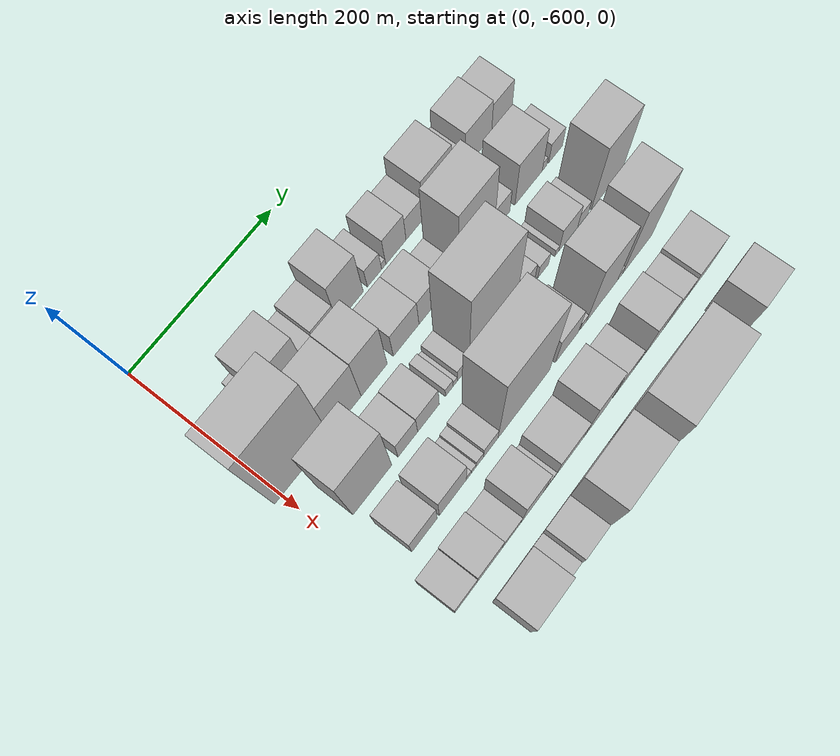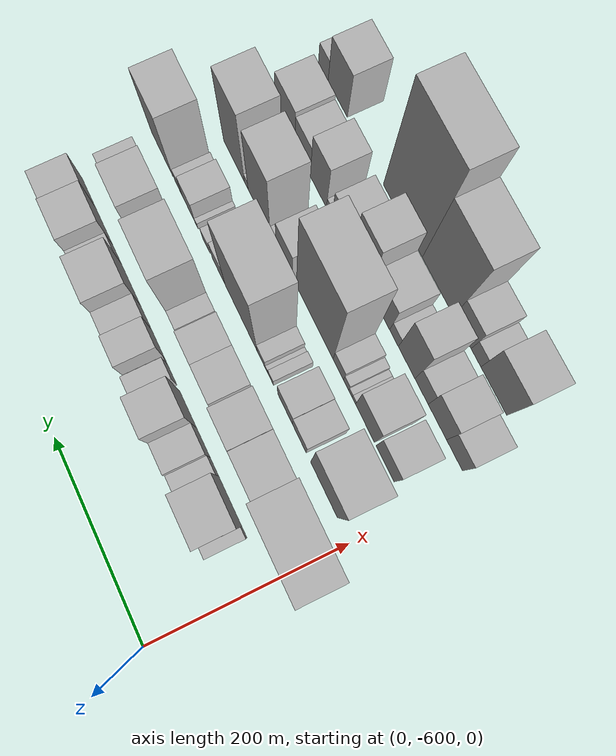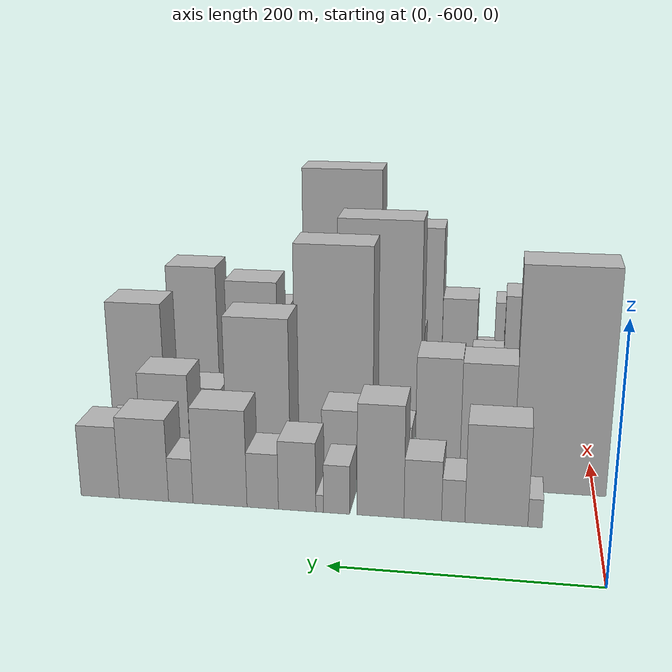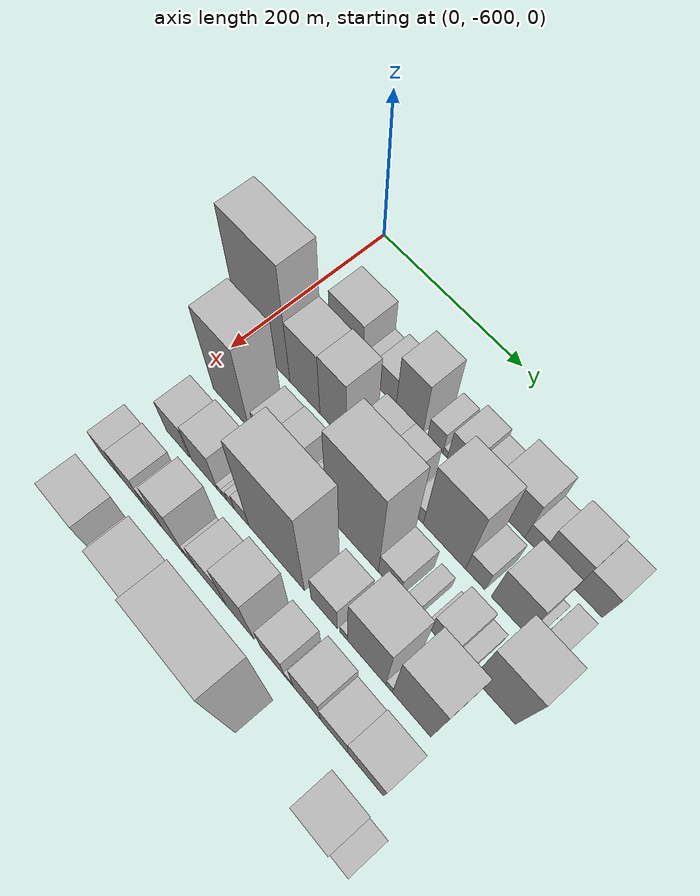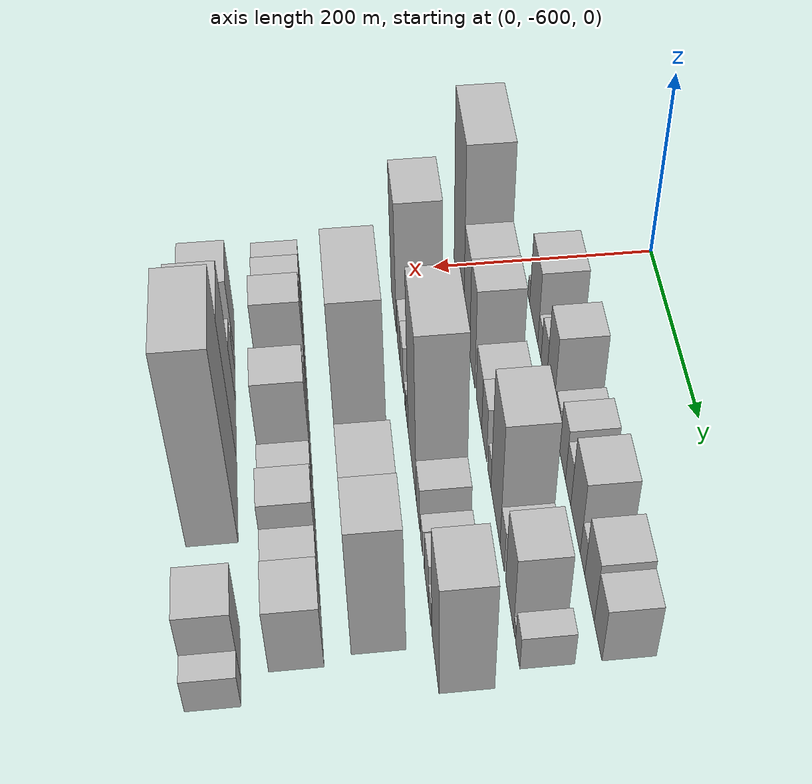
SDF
<sdf version="1.6">
 <world name="default">
  <model name="building_13">
   <static>1</static>
   <pose>100.0000 -551.0722 0 0.000000 0.000000 0.000000</pose>
   <link name="link">
    <pose>0 0 12.00 0 0 0</pose>
    <collision name="collision"><geometry><box><size>40.0000 11.1163 24.0000</size></box></geometry></collision>
    <visual name="visual">
     <cast_shadows>0</cast_shadows>
     <geometry><box><size>40.0000 11.1163 24.0000</size></box></geometry>
     <material>
      <script>
       <uri>model://HANNAS_wall/materials/scripts</uri>
       <uri>model://HANNAS_wall/materials/textures</uri>
       <name>vrc/HANNAS_wall</name>
      </script>
     </material>
    </visual>
   </link>
  </model>
  <model name="building_14">
   <static>1</static>
   <pose>100.0000 -521.0205 0 0.000000 0.000000 0.000000</pose>
   <link name="link">
    <pose>0 0 42.00 0 0 0</pose>
    <collision name="collision"><geometry><box><size>40.0000 48.9872 84.0000</size></box></geometry></collision>
    <visual name="visual">
     <cast_shadows>0</cast_shadows>
     <geometry><box><size>40.0000 48.9872 84.0000</size></box></geometry>
     <material>
      <script>
       <uri>model://HANNAS_wall/materials/scripts</uri>
       <uri>model://HANNAS_wall/materials/textures</uri>
       <name>vrc/HANNAS_wall</name>
      </script>
     </material>
    </visual>
   </link>
  </model>
  <model name="building_15">
   <static>1</static>
   <pose>100.0000 -487.3927 0 0.000000 0.000000 0.000000</pose>
   <link name="link">
    <pose>0 0 18.00 0 0 0</pose>
    <collision name="collision"><geometry><box><size>40.0000 18.2683 36.0000</size></box></geometry></collision>
    <visual name="visual">
     <cast_shadows>0</cast_shadows>
     <geometry><box><size>40.0000 18.2683 36.0000</size></box></geometry>
     <material>
      <script>
       <uri>model://HANNAS_wall/materials/scripts</uri>
       <uri>model://HANNAS_wall/materials/textures</uri>
       <name>vrc/HANNAS_wall</name>
      </script>
     </material>
    </visual>
   </link>
  </model>
  <model name="building_16">
   <static>1</static>
   <pose>100.0000 -463.3852 0 0.000000 0.000000 0.000000</pose>
   <link name="link">
    <pose>0 0 25.50 0 0 0</pose>
    <collision name="collision"><geometry><box><size>40.0000 29.7467 51.0000</size></box></geometry></collision>
    <visual name="visual">
     <cast_shadows>0</cast_shadows>
     <geometry><box><size>40.0000 29.7467 51.0000</size></box></geometry>
     <material>
      <script>
       <uri>model://HANNAS_wall/materials/scripts</uri>
       <uri>model://HANNAS_wall/materials/textures</uri>
       <name>vrc/HANNAS_wall</name>
      </script>
     </material>
    </visual>
   </link>
  </model>
  <model name="building_17">
   <static>1</static>
   <pose>100.0000 -429.7634 0 0.000000 0.000000 0.000000</pose>
   <link name="link">
    <pose>0 0 48.00 0 0 0</pose>
    <collision name="collision"><geometry><box><size>40.0000 37.4968 96.0000</size></box></geometry></collision>
    <visual name="visual">
     <cast_shadows>0</cast_shadows>
     <geometry><box><size>40.0000 37.4968 96.0000</size></box></geometry>
     <material>
      <script>
       <uri>model://HANNAS_wall/materials/scripts</uri>
       <uri>model://HANNAS_wall/materials/textures</uri>
       <name>vrc/HANNAS_wall</name>
      </script>
     </material>
    </visual>
   </link>
  </model>
  <model name="building_18">
   <static>1</static>
   <pose>100.0000 -394.4457 0 0.000000 0.000000 0.000000</pose>
   <link name="link">
    <pose>0 0 21.00 0 0 0</pose>
    <collision name="collision"><geometry><box><size>40.0000 21.1388 42.0000</size></box></geometry></collision>
    <visual name="visual">
     <cast_shadows>0</cast_shadows>
     <geometry><box><size>40.0000 21.1388 42.0000</size></box></geometry>
     <material>
      <script>
       <uri>model://HANNAS_wall/materials/scripts</uri>
       <uri>model://HANNAS_wall/materials/textures</uri>
       <name>vrc/HANNAS_wall</name>
      </script>
     </material>
    </visual>
   </link>
  </model>
  <model name="building_19">
   <static>1</static>
   <pose>100.0000 -380.8029 0 0.000000 0.000000 0.000000</pose>
   <link name="link">
    <pose>0 0 7.50 0 0 0</pose>
    <collision name="collision"><geometry><box><size>40.0000 6.1468 15.0000</size></box></geometry></collision>
    <visual name="visual">
     <cast_shadows>0</cast_shadows>
     <geometry><box><size>40.0000 6.1468 15.0000</size></box></geometry>
     <material>
      <script>
       <uri>model://HANNAS_wall/materials/scripts</uri>
       <uri>model://HANNAS_wall/materials/textures</uri>
       <name>vrc/HANNAS_wall</name>
      </script>
     </material>
    </visual>
   </link>
  </model>
  <model name="building_20">
   <static>1</static>
   <pose>100.0000 -362.4652 0 0.000000 0.000000 0.000000</pose>
   <link name="link">
    <pose>0 0 30.00 0 0 0</pose>
    <collision name="collision"><geometry><box><size>40.0000 30.5286 60.0000</size></box></geometry></collision>
    <visual name="visual">
     <cast_shadows>0</cast_shadows>
     <geometry><box><size>40.0000 30.5286 60.0000</size></box></geometry>
     <material>
      <script>
       <uri>model://HANNAS_wall/materials/scripts</uri>
       <uri>model://HANNAS_wall/materials/textures</uri>
       <name>vrc/HANNAS_wall</name>
      </script>
     </material>
    </visual>
   </link>
  </model>
  <model name="building_21">
   <static>1</static>
   <pose>100.0000 -334.2589 0 0.000000 0.000000 0.000000</pose>
   <link name="link">
    <pose>0 0 24.00 0 0 0</pose>
    <collision name="collision"><geometry><box><size>40.0000 25.8841 48.0000</size></box></geometry></collision>
    <visual name="visual">
     <cast_shadows>0</cast_shadows>
     <geometry><box><size>40.0000 25.8841 48.0000</size></box></geometry>
     <material>
      <script>
       <uri>model://HANNAS_wall/materials/scripts</uri>
       <uri>model://HANNAS_wall/materials/textures</uri>
       <name>vrc/HANNAS_wall</name>
      </script>
     </material>
    </visual>
   </link>
  </model>
  <model name="building_22">
   <static>1</static>
   <pose>100.0000 -298.8532 0 0.000000 0.000000 0.000000</pose>
   <link name="link">
    <pose>0 0 42.00 0 0 0</pose>
    <collision name="collision"><geometry><box><size>40.0000 44.9272 84.0000</size></box></geometry></collision>
    <visual name="visual">
     <cast_shadows>0</cast_shadows>
     <geometry><box><size>40.0000 44.9272 84.0000</size></box></geometry>
     <material>
      <script>
       <uri>model://HANNAS_wall/materials/scripts</uri>
       <uri>model://HANNAS_wall/materials/textures</uri>
       <name>vrc/HANNAS_wall</name>
      </script>
     </material>
    </visual>
   </link>
  </model>
  <model name="building_23">
   <static>1</static>
   <pose>100.0000 -266.1314 0 0.000000 0.000000 0.000000</pose>
   <link name="link">
    <pose>0 0 19.50 0 0 0</pose>
    <collision name="collision"><geometry><box><size>40.0000 20.5165 39.0000</size></box></geometry></collision>
    <visual name="visual">
     <cast_shadows>0</cast_shadows>
     <geometry><box><size>40.0000 20.5165 39.0000</size></box></geometry>
     <material>
      <script>
       <uri>model://HANNAS_wall/materials/scripts</uri>
       <uri>model://HANNAS_wall/materials/textures</uri>
       <name>vrc/HANNAS_wall</name>
      </script>
     </material>
    </visual>
   </link>
  </model>
  <model name="building_24">
   <static>1</static>
   <pose>100.0000 -235.0127 0 0.000000 0.000000 0.000000</pose>
   <link name="link">
    <pose>0 0 36.00 0 0 0</pose>
    <collision name="collision"><geometry><box><size>40.0000 41.7209 72.0000</size></box></geometry></collision>
    <visual name="visual">
     <cast_shadows>0</cast_shadows>
     <geometry><box><size>40.0000 41.7209 72.0000</size></box></geometry>
     <material>
      <script>
       <uri>model://HANNAS_wall/materials/scripts</uri>
       <uri>model://HANNAS_wall/materials/textures</uri>
       <name>vrc/HANNAS_wall</name>
      </script>
     </material>
    </visual>
   </link>
  </model>
  <model name="building_25">
   <static>1</static>
   <pose>100.0000 -197.7678 0 0.000000 0.000000 0.000000</pose>
   <link name="link">
    <pose>0 0 31.50 0 0 0</pose>
    <collision name="collision"><geometry><box><size>40.0000 32.7689 63.0000</size></box></geometry></collision>
    <visual name="visual">
     <cast_shadows>0</cast_shadows>
     <geometry><box><size>40.0000 32.7689 63.0000</size></box></geometry>
     <material>
      <script>
       <uri>model://HANNAS_wall/materials/scripts</uri>
       <uri>model://HANNAS_wall/materials/textures</uri>
       <name>vrc/HANNAS_wall</name>
      </script>
     </material>
    </visual>
   </link>
  </model>
  <model name="building_76">
   <static>1</static>
   <pose>160.0000 -571.4103 0 0.000000 0.000000 0.000000</pose>
   <link name="link">
    <pose>0 0 97.50 0 0 0</pose>
    <collision name="collision"><geometry><box><size>40.0000 76.1925 195.0000</size></box></geometry></collision>
    <visual name="visual">
     <cast_shadows>0</cast_shadows>
     <geometry><box><size>40.0000 76.1925 195.0000</size></box></geometry>
     <material>
      <script>
       <uri>model://HANNAS_wall/materials/scripts</uri>
       <uri>model://HANNAS_wall/materials/textures</uri>
       <name>vrc/HANNAS_wall</name>
      </script>
     </material>
    </visual>
   </link>
  </model>
  <model name="building_77">
   <static>1</static>
   <pose>160.0000 -511.2166 0 0.000000 0.000000 0.000000</pose>
   <link name="link">
    <pose>0 0 55.50 0 0 0</pose>
    <collision name="collision"><geometry><box><size>40.0000 44.1948 111.0000</size></box></geometry></collision>
    <visual name="visual">
     <cast_shadows>0</cast_shadows>
     <geometry><box><size>40.0000 44.1948 111.0000</size></box></geometry>
     <material>
      <script>
       <uri>model://HANNAS_wall/materials/scripts</uri>
       <uri>model://HANNAS_wall/materials/textures</uri>
       <name>vrc/HANNAS_wall</name>
      </script>
     </material>
    </visual>
   </link>
  </model>
  <model name="building_78">
   <static>1</static>
   <pose>160.0000 -470.3845 0 0.000000 0.000000 0.000000</pose>
   <link name="link">
    <pose>0 0 57.00 0 0 0</pose>
    <collision name="collision"><geometry><box><size>40.0000 37.4695 114.0000</size></box></geometry></collision>
    <visual name="visual">
     <cast_shadows>0</cast_shadows>
     <geometry><box><size>40.0000 37.4695 114.0000</size></box></geometry>
     <material>
      <script>
       <uri>model://HANNAS_wall/materials/scripts</uri>
       <uri>model://HANNAS_wall/materials/textures</uri>
       <name>vrc/HANNAS_wall</name>
      </script>
     </material>
    </visual>
   </link>
  </model>
  <model name="building_79">
   <static>1</static>
   <pose>160.0000 -423.7850 0 0.000000 0.000000 0.000000</pose>
   <link name="link">
    <pose>0 0 31.50 0 0 0</pose>
    <collision name="collision"><geometry><box><size>40.0000 37.7293 63.0000</size></box></geometry></collision>
    <visual name="visual">
     <cast_shadows>0</cast_shadows>
     <geometry><box><size>40.0000 37.7293 63.0000</size></box></geometry>
     <material>
      <script>
       <uri>model://HANNAS_wall/materials/scripts</uri>
       <uri>model://HANNAS_wall/materials/textures</uri>
       <name>vrc/HANNAS_wall</name>
      </script>
     </material>
    </visual>
   </link>
  </model>
  <model name="building_80">
   <static>1</static>
   <pose>160.0000 -388.7384 0 0.000000 0.000000 0.000000</pose>
   <link name="link">
    <pose>0 0 31.50 0 0 0</pose>
    <collision name="collision"><geometry><box><size>40.0000 32.3639 63.0000</size></box></geometry></collision>
    <visual name="visual">
     <cast_shadows>0</cast_shadows>
     <geometry><box><size>40.0000 32.3639 63.0000</size></box></geometry>
     <material>
      <script>
       <uri>model://HANNAS_wall/materials/scripts</uri>
       <uri>model://HANNAS_wall/materials/textures</uri>
       <name>vrc/HANNAS_wall</name>
      </script>
     </material>
    </visual>
   </link>
  </model>
  <model name="building_81">
   <static>1</static>
   <pose>160.0000 -354.9567 0 0.000000 0.000000 0.000000</pose>
   <link name="link">
    <pose>0 0 16.50 0 0 0</pose>
    <collision name="collision"><geometry><box><size>40.0000 19.1995 33.0000</size></box></geometry></collision>
    <visual name="visual">
     <cast_shadows>0</cast_shadows>
     <geometry><box><size>40.0000 19.1995 33.0000</size></box></geometry>
     <material>
      <script>
       <uri>model://HANNAS_wall/materials/scripts</uri>
       <uri>model://HANNAS_wall/materials/textures</uri>
       <name>vrc/HANNAS_wall</name>
      </script>
     </material>
    </visual>
   </link>
  </model>
  <model name="building_82">
   <static>1</static>
   <pose>160.0000 -317.7730 0 0.000000 0.000000 0.000000</pose>
   <link name="link">
    <pose>0 0 70.50 0 0 0</pose>
    <collision name="collision"><geometry><box><size>40.0000 55.1679 141.0000</size></box></geometry></collision>
    <visual name="visual">
     <cast_shadows>0</cast_shadows>
     <geometry><box><size>40.0000 55.1679 141.0000</size></box></geometry>
     <material>
      <script>
       <uri>model://HANNAS_wall/materials/scripts</uri>
       <uri>model://HANNAS_wall/materials/textures</uri>
       <name>vrc/HANNAS_wall</name>
      </script>
     </material>
    </visual>
   </link>
  </model>
  <model name="building_83">
   <static>1</static>
   <pose>160.0000 -277.8969 0 0.000000 0.000000 0.000000</pose>
   <link name="link">
    <pose>0 0 24.00 0 0 0</pose>
    <collision name="collision"><geometry><box><size>40.0000 24.5843 48.0000</size></box></geometry></collision>
    <visual name="visual">
     <cast_shadows>0</cast_shadows>
     <geometry><box><size>40.0000 24.5843 48.0000</size></box></geometry>
     <material>
      <script>
       <uri>model://HANNAS_wall/materials/scripts</uri>
       <uri>model://HANNAS_wall/materials/textures</uri>
       <name>vrc/HANNAS_wall</name>
      </script>
     </material>
    </visual>
   </link>
  </model>
  <model name="building_84">
   <static>1</static>
   <pose>160.0000 -235.6598 0 0.000000 0.000000 0.000000</pose>
   <link name="link">
    <pose>0 0 43.50 0 0 0</pose>
    <collision name="collision"><geometry><box><size>40.0000 43.8899 87.0000</size></box></geometry></collision>
    <visual name="visual">
     <cast_shadows>0</cast_shadows>
     <geometry><box><size>40.0000 43.8899 87.0000</size></box></geometry>
     <material>
      <script>
       <uri>model://HANNAS_wall/materials/scripts</uri>
       <uri>model://HANNAS_wall/materials/textures</uri>
       <name>vrc/HANNAS_wall</name>
      </script>
     </material>
    </visual>
   </link>
  </model>
  <model name="building_85">
   <static>1</static>
   <pose>160.0000 -210.0027 0 0.000000 0.000000 0.000000</pose>
   <link name="link">
    <pose>0 0 9.00 0 0 0</pose>
    <collision name="collision"><geometry><box><size>40.0000 7.4242 18.0000</size></box></geometry></collision>
    <visual name="visual">
     <cast_shadows>0</cast_shadows>
     <geometry><box><size>40.0000 7.4242 18.0000</size></box></geometry>
     <material>
      <script>
       <uri>model://HANNAS_wall/materials/scripts</uri>
       <uri>model://HANNAS_wall/materials/textures</uri>
       <name>vrc/HANNAS_wall</name>
      </script>
     </material>
    </visual>
   </link>
  </model>
  <model name="building_86">
   <static>1</static>
   <pose>160.0000 -192.0777 0 0.000000 0.000000 0.000000</pose>
   <link name="link">
    <pose>0 0 19.50 0 0 0</pose>
    <collision name="collision"><geometry><box><size>40.0000 22.4259 39.0000</size></box></geometry></collision>
    <visual name="visual">
     <cast_shadows>0</cast_shadows>
     <geometry><box><size>40.0000 22.4259 39.0000</size></box></geometry>
     <material>
      <script>
       <uri>model://HANNAS_wall/materials/scripts</uri>
       <uri>model://HANNAS_wall/materials/textures</uri>
       <name>vrc/HANNAS_wall</name>
      </script>
     </material>
    </visual>
   </link>
  </model>
  <model name="building_132">
   <static>1</static>
   <pose>220.0000 -548.3788 0 0.000000 0.000000 0.000000</pose>
   <link name="link">
    <pose>0 0 75.00 0 0 0</pose>
    <collision name="collision"><geometry><box><size>40.0000 54.3492 150.0000</size></box></geometry></collision>
    <visual name="visual">
     <cast_shadows>0</cast_shadows>
     <geometry><box><size>40.0000 54.3492 150.0000</size></box></geometry>
     <material>
      <script>
       <uri>model://HANNAS_wall/materials/scripts</uri>
       <uri>model://HANNAS_wall/materials/textures</uri>
       <name>vrc/HANNAS_wall</name>
      </script>
     </material>
    </visual>
   </link>
  </model>
  <model name="building_133">
   <static>1</static>
   <pose>220.0000 -498.1216 0 0.000000 0.000000 0.000000</pose>
   <link name="link">
    <pose>0 0 25.50 0 0 0</pose>
    <collision name="collision"><geometry><box><size>40.0000 28.1653 51.0000</size></box></geometry></collision>
    <visual name="visual">
     <cast_shadows>0</cast_shadows>
     <geometry><box><size>40.0000 28.1653 51.0000</size></box></geometry>
     <material>
      <script>
       <uri>model://HANNAS_wall/materials/scripts</uri>
       <uri>model://HANNAS_wall/materials/textures</uri>
       <name>vrc/HANNAS_wall</name>
      </script>
     </material>
    </visual>
   </link>
  </model>
  <model name="building_134">
   <static>1</static>
   <pose>220.0000 -468.3940 0 0.000000 0.000000 0.000000</pose>
   <link name="link">
    <pose>0 0 27.00 0 0 0</pose>
    <collision name="collision"><geometry><box><size>40.0000 31.2900 54.0000</size></box></geometry></collision>
    <visual name="visual">
     <cast_shadows>0</cast_shadows>
     <geometry><box><size>40.0000 31.2900 54.0000</size></box></geometry>
     <material>
      <script>
       <uri>model://HANNAS_wall/materials/scripts</uri>
       <uri>model://HANNAS_wall/materials/textures</uri>
       <name>vrc/HANNAS_wall</name>
      </script>
     </material>
    </visual>
   </link>
  </model>
  <model name="building_135">
   <static>1</static>
   <pose>220.0000 -438.0207 0 0.000000 0.000000 0.000000</pose>
   <link name="link">
    <pose>0 0 12.00 0 0 0</pose>
    <collision name="collision"><geometry><box><size>40.0000 11.4565 24.0000</size></box></geometry></collision>
    <visual name="visual">
     <cast_shadows>0</cast_shadows>
     <geometry><box><size>40.0000 11.4565 24.0000</size></box></geometry>
     <material>
      <script>
       <uri>model://HANNAS_wall/materials/scripts</uri>
       <uri>model://HANNAS_wall/materials/textures</uri>
       <name>vrc/HANNAS_wall</name>
      </script>
     </material>
    </visual>
   </link>
  </model>
  <model name="building_136">
   <static>1</static>
   <pose>220.0000 -429.2875 0 0.000000 0.000000 0.000000</pose>
   <link name="link">
    <pose>0 0 7.50 0 0 0</pose>
    <collision name="collision"><geometry><box><size>40.0000 6.0100 15.0000</size></box></geometry></collision>
    <visual name="visual">
     <cast_shadows>0</cast_shadows>
     <geometry><box><size>40.0000 6.0100 15.0000</size></box></geometry>
     <material>
      <script>
       <uri>model://HANNAS_wall/materials/scripts</uri>
       <uri>model://HANNAS_wall/materials/textures</uri>
       <name>vrc/HANNAS_wall</name>
      </script>
     </material>
    </visual>
   </link>
  </model>
  <model name="building_137">
   <static>1</static>
   <pose>220.0000 -417.5265 0 0.000000 0.000000 0.000000</pose>
   <link name="link">
    <pose>0 0 16.50 0 0 0</pose>
    <collision name="collision"><geometry><box><size>40.0000 17.5119 33.0000</size></box></geometry></collision>
    <visual name="visual">
     <cast_shadows>0</cast_shadows>
     <geometry><box><size>40.0000 17.5119 33.0000</size></box></geometry>
     <material>
      <script>
       <uri>model://HANNAS_wall/materials/scripts</uri>
       <uri>model://HANNAS_wall/materials/textures</uri>
       <name>vrc/HANNAS_wall</name>
      </script>
     </material>
    </visual>
   </link>
  </model>
  <model name="building_138">
   <static>1</static>
   <pose>220.0000 -373.6180 0 0.000000 0.000000 0.000000</pose>
   <link name="link">
    <pose>0 0 94.50 0 0 0</pose>
    <collision name="collision"><geometry><box><size>40.0000 70.3052 189.0000</size></box></geometry></collision>
    <visual name="visual">
     <cast_shadows>0</cast_shadows>
     <geometry><box><size>40.0000 70.3052 189.0000</size></box></geometry>
     <material>
      <script>
       <uri>model://HANNAS_wall/materials/scripts</uri>
       <uri>model://HANNAS_wall/materials/textures</uri>
       <name>vrc/HANNAS_wall</name>
      </script>
     </material>
    </visual>
   </link>
  </model>
  <model name="building_139">
   <static>1</static>
   <pose>220.0000 -323.9678 0 0.000000 0.000000 0.000000</pose>
   <link name="link">
    <pose>0 0 25.50 0 0 0</pose>
    <collision name="collision"><geometry><box><size>40.0000 28.9952 51.0000</size></box></geometry></collision>
    <visual name="visual">
     <cast_shadows>0</cast_shadows>
     <geometry><box><size>40.0000 28.9952 51.0000</size></box></geometry>
     <material>
      <script>
       <uri>model://HANNAS_wall/materials/scripts</uri>
       <uri>model://HANNAS_wall/materials/textures</uri>
       <name>vrc/HANNAS_wall</name>
      </script>
     </material>
    </visual>
   </link>
  </model>
  <model name="building_140">
   <static>1</static>
   <pose>220.0000 -295.0157 0 0.000000 0.000000 0.000000</pose>
   <link name="link">
    <pose>0 0 15.00 0 0 0</pose>
    <collision name="collision"><geometry><box><size>40.0000 16.9089 30.0000</size></box></geometry></collision>
    <visual name="visual">
     <cast_shadows>0</cast_shadows>
     <geometry><box><size>40.0000 16.9089 30.0000</size></box></geometry>
     <material>
      <script>
       <uri>model://HANNAS_wall/materials/scripts</uri>
       <uri>model://HANNAS_wall/materials/textures</uri>
       <name>vrc/HANNAS_wall</name>
      </script>
     </material>
    </visual>
   </link>
  </model>
  <model name="building_141">
   <static>1</static>
   <pose>220.0000 -273.5175 0 0.000000 0.000000 0.000000</pose>
   <link name="link">
    <pose>0 0 7.50 0 0 0</pose>
    <collision name="collision"><geometry><box><size>40.0000 6.0876 15.0000</size></box></geometry></collision>
    <visual name="visual">
     <cast_shadows>0</cast_shadows>
     <geometry><box><size>40.0000 6.0876 15.0000</size></box></geometry>
     <material>
      <script>
       <uri>model://HANNAS_wall/materials/scripts</uri>
       <uri>model://HANNAS_wall/materials/textures</uri>
       <name>vrc/HANNAS_wall</name>
      </script>
     </material>
    </visual>
   </link>
  </model>
  <model name="building_142">
   <static>1</static>
   <pose>220.0000 -255.2417 0 0.000000 0.000000 0.000000</pose>
   <link name="link">
    <pose>0 0 25.50 0 0 0</pose>
    <collision name="collision"><geometry><box><size>40.0000 30.4639 51.0000</size></box></geometry></collision>
    <visual name="visual">
     <cast_shadows>0</cast_shadows>
     <geometry><box><size>40.0000 30.4639 51.0000</size></box></geometry>
     <material>
      <script>
       <uri>model://HANNAS_wall/materials/scripts</uri>
       <uri>model://HANNAS_wall/materials/textures</uri>
       <name>vrc/HANNAS_wall</name>
      </script>
     </material>
    </visual>
   </link>
  </model>
  <model name="building_143">
   <static>1</static>
   <pose>220.0000 -231.4248 0 0.000000 0.000000 0.000000</pose>
   <link name="link">
    <pose>0 0 15.00 0 0 0</pose>
    <collision name="collision"><geometry><box><size>40.0000 17.1699 30.0000</size></box></geometry></collision>
    <visual name="visual">
     <cast_shadows>0</cast_shadows>
     <geometry><box><size>40.0000 17.1699 30.0000</size></box></geometry>
     <material>
      <script>
       <uri>model://HANNAS_wall/materials/scripts</uri>
       <uri>model://HANNAS_wall/materials/textures</uri>
       <name>vrc/HANNAS_wall</name>
      </script>
     </material>
    </visual>
   </link>
  </model>
  <model name="building_144">
   <static>1</static>
   <pose>220.0000 -192.4136 0 0.000000 0.000000 0.000000</pose>
   <link name="link">
    <pose>0 0 64.50 0 0 0</pose>
    <collision name="collision"><geometry><box><size>40.0000 50.8526 129.0000</size></box></geometry></collision>
    <visual name="visual">
     <cast_shadows>0</cast_shadows>
     <geometry><box><size>40.0000 50.8526 129.0000</size></box></geometry>
     <material>
      <script>
       <uri>model://HANNAS_wall/materials/scripts</uri>
       <uri>model://HANNAS_wall/materials/textures</uri>
       <name>vrc/HANNAS_wall</name>
      </script>
     </material>
    </visual>
   </link>
  </model>
  <model name="building_183">
   <static>1</static>
   <pose>280.0000 -551.7551 0 0.000000 0.000000 0.000000</pose>
   <link name="link">
    <pose>0 0 31.50 0 0 0</pose>
    <collision name="collision"><geometry><box><size>40.0000 35.9492 63.0000</size></box></geometry></collision>
    <visual name="visual">
     <cast_shadows>0</cast_shadows>
     <geometry><box><size>40.0000 35.9492 63.0000</size></box></geometry>
     <material>
      <script>
       <uri>model://HANNAS_wall/materials/scripts</uri>
       <uri>model://HANNAS_wall/materials/textures</uri>
       <name>vrc/HANNAS_wall</name>
      </script>
     </material>
    </visual>
   </link>
  </model>
  <model name="building_184">
   <static>1</static>
   <pose>280.0000 -511.4812 0 0.000000 0.000000 0.000000</pose>
   <link name="link">
    <pose>0 0 37.50 0 0 0</pose>
    <collision name="collision"><geometry><box><size>40.0000 38.5985 75.0000</size></box></geometry></collision>
    <visual name="visual">
     <cast_shadows>0</cast_shadows>
     <geometry><box><size>40.0000 38.5985 75.0000</size></box></geometry>
     <material>
      <script>
       <uri>model://HANNAS_wall/materials/scripts</uri>
       <uri>model://HANNAS_wall/materials/textures</uri>
       <name>vrc/HANNAS_wall</name>
      </script>
     </material>
    </visual>
   </link>
  </model>
  <model name="building_185">
   <static>1</static>
   <pose>280.0000 -488.6132 0 0.000000 0.000000 0.000000</pose>
   <link name="link">
    <pose>0 0 7.50 0 0 0</pose>
    <collision name="collision"><geometry><box><size>40.0000 7.1376 15.0000</size></box></geometry></collision>
    <visual name="visual">
     <cast_shadows>0</cast_shadows>
     <geometry><box><size>40.0000 7.1376 15.0000</size></box></geometry>
     <material>
      <script>
       <uri>model://HANNAS_wall/materials/scripts</uri>
       <uri>model://HANNAS_wall/materials/textures</uri>
       <name>vrc/HANNAS_wall</name>
      </script>
     </material>
    </visual>
   </link>
  </model>
  <model name="building_186">
   <static>1</static>
   <pose>280.0000 -481.5010 0 0.000000 0.000000 0.000000</pose>
   <link name="link">
    <pose>0 0 7.50 0 0 0</pose>
    <collision name="collision"><geometry><box><size>40.0000 7.0868 15.0000</size></box></geometry></collision>
    <visual name="visual">
     <cast_shadows>0</cast_shadows>
     <geometry><box><size>40.0000 7.0868 15.0000</size></box></geometry>
     <material>
      <script>
       <uri>model://HANNAS_wall/materials/scripts</uri>
       <uri>model://HANNAS_wall/materials/textures</uri>
       <name>vrc/HANNAS_wall</name>
      </script>
     </material>
    </visual>
   </link>
  </model>
  <model name="building_187">
   <static>1</static>
   <pose>280.0000 -472.6919 0 0.000000 0.000000 0.000000</pose>
   <link name="link">
    <pose>0 0 12.00 0 0 0</pose>
    <collision name="collision"><geometry><box><size>40.0000 10.5314 24.0000</size></box></geometry></collision>
    <visual name="visual">
     <cast_shadows>0</cast_shadows>
     <geometry><box><size>40.0000 10.5314 24.0000</size></box></geometry>
     <material>
      <script>
       <uri>model://HANNAS_wall/materials/scripts</uri>
       <uri>model://HANNAS_wall/materials/textures</uri>
       <name>vrc/HANNAS_wall</name>
      </script>
     </material>
    </visual>
   </link>
  </model>
  <model name="building_188">
   <static>1</static>
   <pose>280.0000 -456.6886 0 0.000000 0.000000 0.000000</pose>
   <link name="link">
    <pose>0 0 18.00 0 0 0</pose>
    <collision name="collision"><geometry><box><size>40.0000 21.4753 36.0000</size></box></geometry></collision>
    <visual name="visual">
     <cast_shadows>0</cast_shadows>
     <geometry><box><size>40.0000 21.4753 36.0000</size></box></geometry>
     <material>
      <script>
       <uri>model://HANNAS_wall/materials/scripts</uri>
       <uri>model://HANNAS_wall/materials/textures</uri>
       <name>vrc/HANNAS_wall</name>
      </script>
     </material>
    </visual>
   </link>
  </model>
  <model name="building_189">
   <static>1</static>
   <pose>280.0000 -406.9970 0 0.000000 0.000000 0.000000</pose>
   <link name="link">
    <pose>0 0 99.00 0 0 0</pose>
    <collision name="collision"><geometry><box><size>40.0000 77.9077 198.0000</size></box></geometry></collision>
    <visual name="visual">
     <cast_shadows>0</cast_shadows>
     <geometry><box><size>40.0000 77.9077 198.0000</size></box></geometry>
     <material>
      <script>
       <uri>model://HANNAS_wall/materials/scripts</uri>
       <uri>model://HANNAS_wall/materials/textures</uri>
       <name>vrc/HANNAS_wall</name>
      </script>
     </material>
    </visual>
   </link>
  </model>
  <model name="building_190">
   <static>1</static>
   <pose>280.0000 -341.4598 0 0.000000 0.000000 0.000000</pose>
   <link name="link">
    <pose>0 0 33.00 0 0 0</pose>
    <collision name="collision"><geometry><box><size>40.0000 35.1668 66.0000</size></box></geometry></collision>
    <visual name="visual">
     <cast_shadows>0</cast_shadows>
     <geometry><box><size>40.0000 35.1668 66.0000</size></box></geometry>
     <material>
      <script>
       <uri>model://HANNAS_wall/materials/scripts</uri>
       <uri>model://HANNAS_wall/materials/textures</uri>
       <name>vrc/HANNAS_wall</name>
      </script>
     </material>
    </visual>
   </link>
  </model>
  <model name="building_191">
   <static>1</static>
   <pose>280.0000 -315.6999 0 0.000000 0.000000 0.000000</pose>
   <link name="link">
    <pose>0 0 10.50 0 0 0</pose>
    <collision name="collision"><geometry><box><size>40.0000 10.3529 21.0000</size></box></geometry></collision>
    <visual name="visual">
     <cast_shadows>0</cast_shadows>
     <geometry><box><size>40.0000 10.3529 21.0000</size></box></geometry>
     <material>
      <script>
       <uri>model://HANNAS_wall/materials/scripts</uri>
       <uri>model://HANNAS_wall/materials/textures</uri>
       <name>vrc/HANNAS_wall</name>
      </script>
     </material>
    </visual>
   </link>
  </model>
  <model name="building_192">
   <static>1</static>
   <pose>280.0000 -286.0220 0 0.000000 0.000000 0.000000</pose>
   <link name="link">
    <pose>0 0 67.50 0 0 0</pose>
    <collision name="collision"><geometry><box><size>40.0000 49.0030 135.0000</size></box></geometry></collision>
    <visual name="visual">
     <cast_shadows>0</cast_shadows>
     <geometry><box><size>40.0000 49.0030 135.0000</size></box></geometry>
     <material>
      <script>
       <uri>model://HANNAS_wall/materials/scripts</uri>
       <uri>model://HANNAS_wall/materials/textures</uri>
       <name>vrc/HANNAS_wall</name>
      </script>
     </material>
    </visual>
   </link>
  </model>
  <model name="building_193">
   <static>1</static>
   <pose>280.0000 -257.2705 0 0.000000 0.000000 0.000000</pose>
   <link name="link">
    <pose>0 0 10.50 0 0 0</pose>
    <collision name="collision"><geometry><box><size>40.0000 8.5000 21.0000</size></box></geometry></collision>
    <visual name="visual">
     <cast_shadows>0</cast_shadows>
     <geometry><box><size>40.0000 8.5000 21.0000</size></box></geometry>
     <material>
      <script>
       <uri>model://HANNAS_wall/materials/scripts</uri>
       <uri>model://HANNAS_wall/materials/textures</uri>
       <name>vrc/HANNAS_wall</name>
      </script>
     </material>
    </visual>
   </link>
  </model>
  <model name="building_194">
   <static>1</static>
   <pose>280.0000 -229.1738 0 0.000000 0.000000 0.000000</pose>
   <link name="link">
    <pose>0 0 73.50 0 0 0</pose>
    <collision name="collision"><geometry><box><size>40.0000 47.6933 147.0000</size></box></geometry></collision>
    <visual name="visual">
     <cast_shadows>0</cast_shadows>
     <geometry><box><size>40.0000 47.6933 147.0000</size></box></geometry>
     <material>
      <script>
       <uri>model://HANNAS_wall/materials/scripts</uri>
       <uri>model://HANNAS_wall/materials/textures</uri>
       <name>vrc/HANNAS_wall</name>
      </script>
     </material>
    </visual>
   </link>
  </model>
  <model name="building_238">
   <static>1</static>
   <pose>340.0000 -572.3643 0 0.000000 0.000000 0.000000</pose>
   <link name="link">
    <pose>0 0 28.50 0 0 0</pose>
    <collision name="collision"><geometry><box><size>40.0000 30.8450 57.0000</size></box></geometry></collision>
    <visual name="visual">
     <cast_shadows>0</cast_shadows>
     <geometry><box><size>40.0000 30.8450 57.0000</size></box></geometry>
     <material>
      <script>
       <uri>model://HANNAS_wall/materials/scripts</uri>
       <uri>model://HANNAS_wall/materials/textures</uri>
       <name>vrc/HANNAS_wall</name>
      </script>
     </material>
    </visual>
   </link>
  </model>
  <model name="building_239">
   <static>1</static>
   <pose>340.0000 -539.0578 0 0.000000 0.000000 0.000000</pose>
   <link name="link">
    <pose>0 0 34.50 0 0 0</pose>
    <collision name="collision"><geometry><box><size>40.0000 35.7679 69.0000</size></box></geometry></collision>
    <visual name="visual">
     <cast_shadows>0</cast_shadows>
     <geometry><box><size>40.0000 35.7679 69.0000</size></box></geometry>
     <material>
      <script>
       <uri>model://HANNAS_wall/materials/scripts</uri>
       <uri>model://HANNAS_wall/materials/textures</uri>
       <name>vrc/HANNAS_wall</name>
      </script>
     </material>
    </visual>
   </link>
  </model>
  <model name="building_240">
   <static>1</static>
   <pose>340.0000 -508.0949 0 0.000000 0.000000 0.000000</pose>
   <link name="link">
    <pose>0 0 25.50 0 0 0</pose>
    <collision name="collision"><geometry><box><size>40.0000 26.1579 51.0000</size></box></geometry></collision>
    <visual name="visual">
     <cast_shadows>0</cast_shadows>
     <geometry><box><size>40.0000 26.1579 51.0000</size></box></geometry>
     <material>
      <script>
       <uri>model://HANNAS_wall/materials/scripts</uri>
       <uri>model://HANNAS_wall/materials/textures</uri>
       <name>vrc/HANNAS_wall</name>
      </script>
     </material>
    </visual>
   </link>
  </model>
  <model name="building_241">
   <static>1</static>
   <pose>340.0000 -478.2842 0 0.000000 0.000000 0.000000</pose>
   <link name="link">
    <pose>0 0 54.00 0 0 0</pose>
    <collision name="collision"><geometry><box><size>40.0000 33.4635 108.0000</size></box></geometry></collision>
    <visual name="visual">
     <cast_shadows>0</cast_shadows>
     <geometry><box><size>40.0000 33.4635 108.0000</size></box></geometry>
     <material>
      <script>
       <uri>model://HANNAS_wall/materials/scripts</uri>
       <uri>model://HANNAS_wall/materials/textures</uri>
       <name>vrc/HANNAS_wall</name>
      </script>
     </material>
    </visual>
   </link>
  </model>
  <model name="building_242">
   <static>1</static>
   <pose>340.0000 -452.7297 0 0.000000 0.000000 0.000000</pose>
   <link name="link">
    <pose>0 0 15.00 0 0 0</pose>
    <collision name="collision"><geometry><box><size>40.0000 17.6456 30.0000</size></box></geometry></collision>
    <visual name="visual">
     <cast_shadows>0</cast_shadows>
     <geometry><box><size>40.0000 17.6456 30.0000</size></box></geometry>
     <material>
      <script>
       <uri>model://HANNAS_wall/materials/scripts</uri>
       <uri>model://HANNAS_wall/materials/textures</uri>
       <name>vrc/HANNAS_wall</name>
      </script>
     </material>
    </visual>
   </link>
  </model>
  <model name="building_243">
   <static>1</static>
   <pose>340.0000 -422.6998 0 0.000000 0.000000 0.000000</pose>
   <link name="link">
    <pose>0 0 36.00 0 0 0</pose>
    <collision name="collision"><geometry><box><size>40.0000 42.4143 72.0000</size></box></geometry></collision>
    <visual name="visual">
     <cast_shadows>0</cast_shadows>
     <geometry><box><size>40.0000 42.4143 72.0000</size></box></geometry>
     <material>
      <script>
       <uri>model://HANNAS_wall/materials/scripts</uri>
       <uri>model://HANNAS_wall/materials/textures</uri>
       <name>vrc/HANNAS_wall</name>
      </script>
     </material>
    </visual>
   </link>
  </model>
  <model name="building_244">
   <static>1</static>
   <pose>340.0000 -382.6698 0 0.000000 0.000000 0.000000</pose>
   <link name="link">
    <pose>0 0 61.50 0 0 0</pose>
    <collision name="collision"><geometry><box><size>40.0000 37.6457 123.0000</size></box></geometry></collision>
    <visual name="visual">
     <cast_shadows>0</cast_shadows>
     <geometry><box><size>40.0000 37.6457 123.0000</size></box></geometry>
     <material>
      <script>
       <uri>model://HANNAS_wall/materials/scripts</uri>
       <uri>model://HANNAS_wall/materials/textures</uri>
       <name>vrc/HANNAS_wall</name>
      </script>
     </material>
    </visual>
   </link>
  </model>
  <model name="building_245">
   <static>1</static>
   <pose>340.0000 -338.2888 0 0.000000 0.000000 0.000000</pose>
   <link name="link">
    <pose>0 0 33.00 0 0 0</pose>
    <collision name="collision"><geometry><box><size>40.0000 33.1162 66.0000</size></box></geometry></collision>
    <visual name="visual">
     <cast_shadows>0</cast_shadows>
     <geometry><box><size>40.0000 33.1162 66.0000</size></box></geometry>
     <material>
      <script>
       <uri>model://HANNAS_wall/materials/scripts</uri>
       <uri>model://HANNAS_wall/materials/textures</uri>
       <name>vrc/HANNAS_wall</name>
      </script>
     </material>
    </visual>
   </link>
  </model>
  <model name="building_246">
   <static>1</static>
   <pose>340.0000 -316.0617 0 0.000000 0.000000 0.000000</pose>
   <link name="link">
    <pose>0 0 12.00 0 0 0</pose>
    <collision name="collision"><geometry><box><size>40.0000 11.3379 24.0000</size></box></geometry></collision>
    <visual name="visual">
     <cast_shadows>0</cast_shadows>
     <geometry><box><size>40.0000 11.3379 24.0000</size></box></geometry>
     <material>
      <script>
       <uri>model://HANNAS_wall/materials/scripts</uri>
       <uri>model://HANNAS_wall/materials/textures</uri>
       <name>vrc/HANNAS_wall</name>
      </script>
     </material>
    </visual>
   </link>
  </model>
  <model name="building_247">
   <static>1</static>
   <pose>340.0000 -292.8638 0 0.000000 0.000000 0.000000</pose>
   <link name="link">
    <pose>0 0 46.50 0 0 0</pose>
    <collision name="collision"><geometry><box><size>40.0000 35.0580 93.0000</size></box></geometry></collision>
    <visual name="visual">
     <cast_shadows>0</cast_shadows>
     <geometry><box><size>40.0000 35.0580 93.0000</size></box></geometry>
     <material>
      <script>
       <uri>model://HANNAS_wall/materials/scripts</uri>
       <uri>model://HANNAS_wall/materials/textures</uri>
       <name>vrc/HANNAS_wall</name>
      </script>
     </material>
    </visual>
   </link>
  </model>
  <model name="building_248">
   <static>1</static>
   <pose>340.0000 -258.2561 0 0.000000 0.000000 0.000000</pose>
   <link name="link">
    <pose>0 0 33.00 0 0 0</pose>
    <collision name="collision"><geometry><box><size>40.0000 34.1574 66.0000</size></box></geometry></collision>
    <visual name="visual">
     <cast_shadows>0</cast_shadows>
     <geometry><box><size>40.0000 34.1574 66.0000</size></box></geometry>
     <material>
      <script>
       <uri>model://HANNAS_wall/materials/scripts</uri>
       <uri>model://HANNAS_wall/materials/textures</uri>
       <name>vrc/HANNAS_wall</name>
      </script>
     </material>
    </visual>
   </link>
  </model>
  <model name="building_249">
   <static>1</static>
   <pose>340.0000 -219.1203 0 0.000000 0.000000 0.000000</pose>
   <link name="link">
    <pose>0 0 37.50 0 0 0</pose>
    <collision name="collision"><geometry><box><size>40.0000 44.1142 75.0000</size></box></geometry></collision>
    <visual name="visual">
     <cast_shadows>0</cast_shadows>
     <geometry><box><size>40.0000 44.1142 75.0000</size></box></geometry>
     <material>
      <script>
       <uri>model://HANNAS_wall/materials/scripts</uri>
       <uri>model://HANNAS_wall/materials/textures</uri>
       <name>vrc/HANNAS_wall</name>
      </script>
     </material>
    </visual>
   </link>
  </model>
  <model name="building_297">
   <static>1</static>
   <pose>400.0000 -536.5389 0 0.000000 0.000000 0.000000</pose>
   <link name="link">
    <pose>0 0 43.50 0 0 0</pose>
    <collision name="collision"><geometry><box><size>40.0000 49.7583 87.0000</size></box></geometry></collision>
    <visual name="visual">
     <cast_shadows>0</cast_shadows>
     <geometry><box><size>40.0000 49.7583 87.0000</size></box></geometry>
     <material>
      <script>
       <uri>model://HANNAS_wall/materials/scripts</uri>
       <uri>model://HANNAS_wall/materials/textures</uri>
       <name>vrc/HANNAS_wall</name>
      </script>
     </material>
    </visual>
   </link>
  </model>
  <model name="building_298">
   <static>1</static>
   <pose>400.0000 -502.1583 0 0.000000 0.000000 0.000000</pose>
   <link name="link">
    <pose>0 0 18.00 0 0 0</pose>
    <collision name="collision"><geometry><box><size>40.0000 19.0029 36.0000</size></box></geometry></collision>
    <visual name="visual">
     <cast_shadows>0</cast_shadows>
     <geometry><box><size>40.0000 19.0029 36.0000</size></box></geometry>
     <material>
      <script>
       <uri>model://HANNAS_wall/materials/scripts</uri>
       <uri>model://HANNAS_wall/materials/textures</uri>
       <name>vrc/HANNAS_wall</name>
      </script>
     </material>
    </visual>
   </link>
  </model>
  <model name="building_299">
   <static>1</static>
   <pose>400.0000 -475.4144 0 0.000000 0.000000 0.000000</pose>
   <link name="link">
    <pose>0 0 31.50 0 0 0</pose>
    <collision name="collision"><geometry><box><size>40.0000 34.4850 63.0000</size></box></geometry></collision>
    <visual name="visual">
     <cast_shadows>0</cast_shadows>
     <geometry><box><size>40.0000 34.4850 63.0000</size></box></geometry>
     <material>
      <script>
       <uri>model://HANNAS_wall/materials/scripts</uri>
       <uri>model://HANNAS_wall/materials/textures</uri>
       <name>vrc/HANNAS_wall</name>
      </script>
     </material>
    </visual>
   </link>
  </model>
  <model name="building_300">
   <static>1</static>
   <pose>400.0000 -426.5090 0 0.000000 0.000000 0.000000</pose>
   <link name="link">
    <pose>0 0 81.00 0 0 0</pose>
    <collision name="collision"><geometry><box><size>40.0000 63.3258 162.0000</size></box></geometry></collision>
    <visual name="visual">
     <cast_shadows>0</cast_shadows>
     <geometry><box><size>40.0000 63.3258 162.0000</size></box></geometry>
     <material>
      <script>
       <uri>model://HANNAS_wall/materials/scripts</uri>
       <uri>model://HANNAS_wall/materials/textures</uri>
       <name>vrc/HANNAS_wall</name>
      </script>
     </material>
    </visual>
   </link>
  </model>
  <model name="building_301">
   <static>1</static>
   <pose>400.0000 -354.1473 0 0.000000 0.000000 0.000000</pose>
   <link name="link">
    <pose>0 0 109.50 0 0 0</pose>
    <collision name="collision"><geometry><box><size>40.0000 81.3976 219.0000</size></box></geometry></collision>
    <visual name="visual">
     <cast_shadows>0</cast_shadows>
     <geometry><box><size>40.0000 81.3976 219.0000</size></box></geometry>
     <material>
      <script>
       <uri>model://HANNAS_wall/materials/scripts</uri>
       <uri>model://HANNAS_wall/materials/textures</uri>
       <name>vrc/HANNAS_wall</name>
      </script>
     </material>
    </visual>
   </link>
  </model>
  <model name="building_302">
   <static>1</static>
   <pose>400.0000 -214.2663 0 0.000000 0.000000 0.000000</pose>
   <link name="link">
    <pose>0 0 42.00 0 0 0</pose>
    <collision name="collision"><geometry><box><size>40.0000 42.7881 84.0000</size></box></geometry></collision>
    <visual name="visual">
     <cast_shadows>0</cast_shadows>
     <geometry><box><size>40.0000 42.7881 84.0000</size></box></geometry>
     <material>
      <script>
       <uri>model://HANNAS_wall/materials/scripts</uri>
       <uri>model://HANNAS_wall/materials/textures</uri>
       <name>vrc/HANNAS_wall</name>
      </script>
     </material>
    </visual>
   </link>
  </model>
  <model name="building_303">
   <static>1</static>
   <pose>400.0000 -181.9660 0 0.000000 0.000000 0.000000</pose>
   <link name="link">
    <pose>0 0 19.50 0 0 0</pose>
    <collision name="collision"><geometry><box><size>40.0000 21.8125 39.0000</size></box></geometry></collision>
    <visual name="visual">
     <cast_shadows>0</cast_shadows>
     <geometry><box><size>40.0000 21.8125 39.0000</size></box></geometry>
     <material>
      <script>
       <uri>model://HANNAS_wall/materials/scripts</uri>
       <uri>model://HANNAS_wall/materials/textures</uri>
       <name>vrc/HANNAS_wall</name>
      </script>
     </material>
    </visual>
   </link>
  </model>
 </world>
</sdf>
